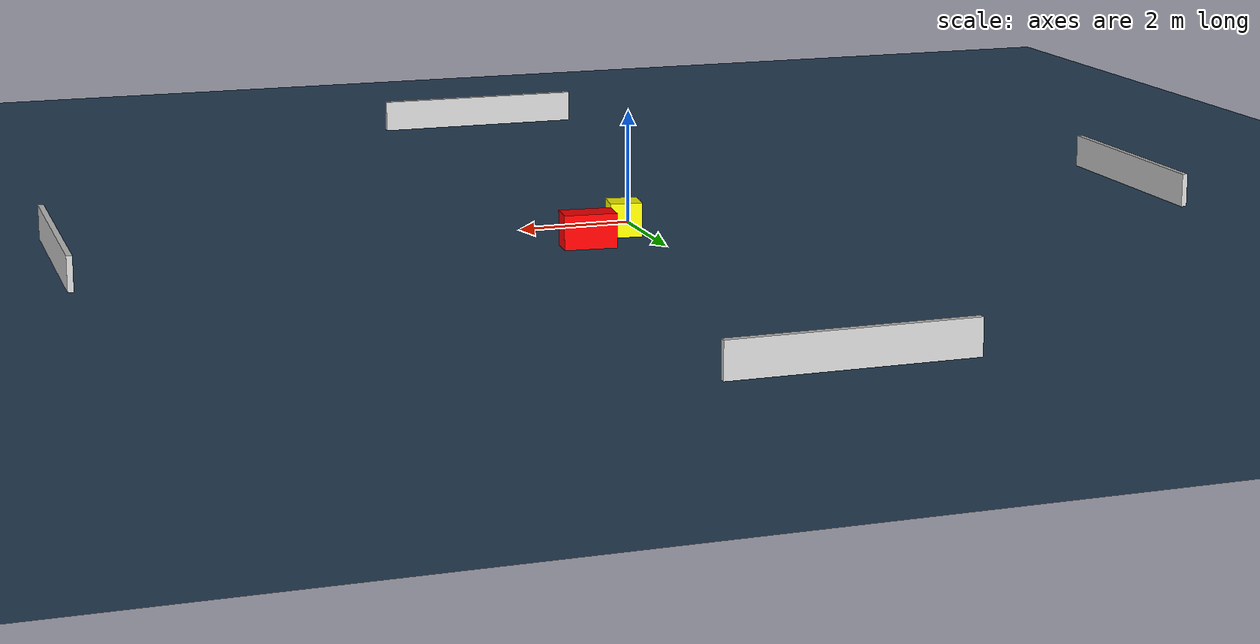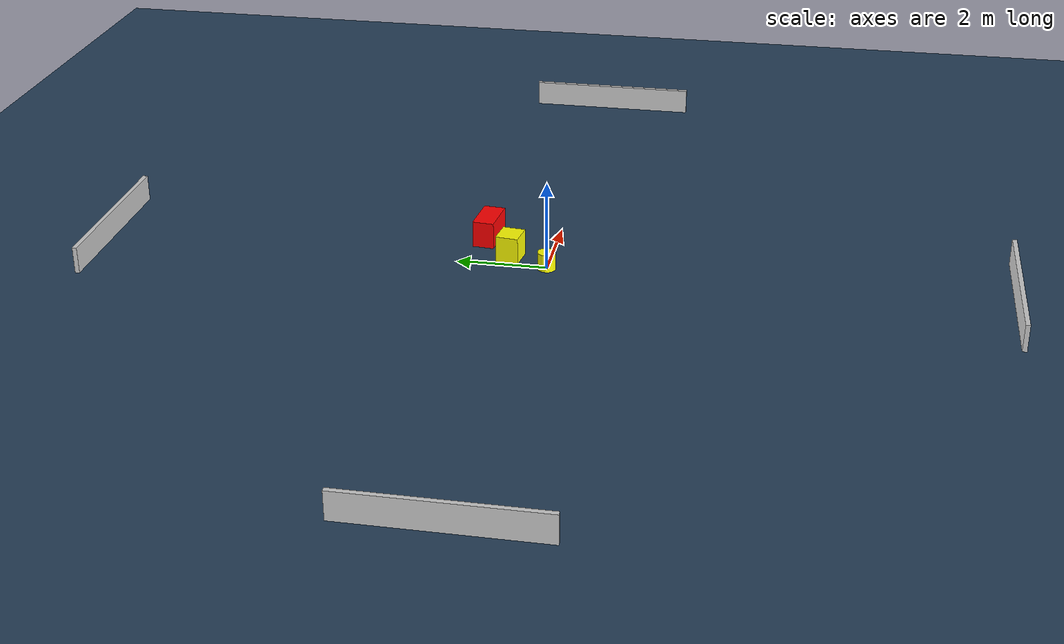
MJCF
<?xml version="1.0" ?>
<mujoco model="generated_environment">
  <option timestep="0.01" integrator="RK4" cone="elliptic"/>
  <default>
    <geom density="1"/>
  </default>
  <asset>
    <texture builtin="gradient" height="3072" name="skybox" rgb1="0.3 0.5 0.7" rgb2="0 0 0" type="skybox" width="512"/>
    <texture builtin="checker" height="300" name="groundplane" rgb1="0.2 0.3 0.4" rgb2="0.1 0.2 0.3" type="2d" width="300"/>
    <material name="groundplane" reflectance="0.2" texrepeat="5 5" texture="groundplane"/>
  </asset>
  <worldbody>
    <light dir="0 0 -1" directional="true" pos="0 0 1.5"/>
    <geom condim="3" friction="0.5 0.005 0.001" material="groundplane" name="floor" pos="0 0 0" size="0 0 0.05" type="plane"/>
    <body name="walls">
      <geom name="wall_1" condim="4" pos="-10.0 0.0 0.3" rgba="0.800000011920929 0.800000011920929 0.800000011920929 1.0" size="0.05 2.0 0.3" type="box"/>
      <geom name="wall_2" condim="4" pos="10.0 0.0 0.3" rgba="0.800000011920929 0.800000011920929 0.800000011920929 1.0" size="0.05 2.0 0.3" type="box"/>
      <geom name="wall_3" condim="4" pos="0.0 -10.0 0.3" rgba="0.800000011920929 0.800000011920929 0.800000011920929 1.0" size="2.0 0.05 0.3" type="box"/>
      <geom name="wall_4" condim="4" pos="0.0 10.0 0.3" rgba="0.800000011920929 0.800000011920929 0.800000011920929 1.0" size="2.0 0.05 0.3" type="box"/>
    </body>
    <body name="robot">
      <joint name="joint_x" type="slide" pos="0 0 0" axis="1 0 0"/>
      <joint name="joint_y" type="slide" pos="0 0 0" axis="0 1 0"/>
      <geom name="robot" type="cylinder" pos="0.0 0.0 0.2" size="0.2 0.2 0.0" mass="5.0" friction="1.0 0.005 0.0001" condim="4" rgba="1.0 1.0 0.0 1.0"/>
    </body>
    <body name="obstacle_1_movable">
      <geom name="obstacle_1_movable" condim="4" pos="0.3911098505695899 0.8820298790320183 0.3" euler="0 0 352.89645214426747" friction="0.0 0.005 0.001" rgba="1.0 1.0 0.0 1.0" size="0.2754066518829612 0.25155629697049825 0.3" type="box" mass="0.1"/>
      <joint type="free"/>
    </body>
    <body name="obstacle_2_static">
      <geom name="obstacle_2_static" condim="4" pos="1.2548728971752583 1.5452415059850628 0.3" euler="0 0 354.7643184548834" friction="0.0 0.005 0.001" rgba="1.0 0.0 0.0 1.0" size="0.4574639911223554 0.24020504081507354 0.3" type="box"/>
    </body>
  </worldbody>
  <actuator>
    <motor name="actuator_x" joint="joint_x" gear="1" ctrlrange="-1 1"/>
    <motor name="actuator_y" joint="joint_y" gear="1" ctrlrange="-1 1"/>
  </actuator>
</mujoco>
